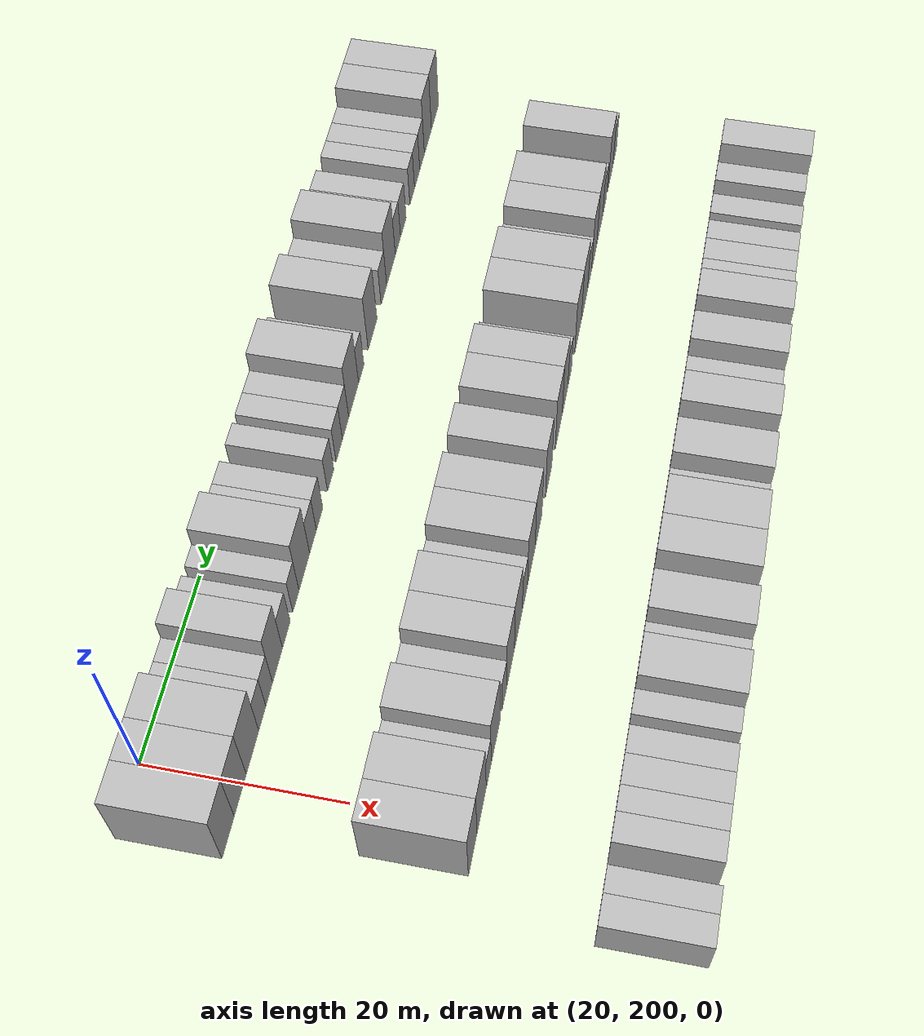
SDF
<sdf version="1.6">
 <world name="default">
  <model name="building_143">
   <static>1</static>
   <pose>25.0000 194.8662 0 0.000000 0.000000 0.000000</pose>
   <link name="link">
    <pose>0 0 4.50 0 0 0</pose>
    <collision name="collision"><geometry><box><size>10.0000 4.0058 9.0000</size></box></geometry></collision>
    <visual name="visual">
     <cast_shadows>0</cast_shadows>
     <geometry><box><size>10.0000 4.0058 9.0000</size></box></geometry>
     <material>
      <script>
       <uri>model://HANNAS_wall/materials/scripts</uri>
       <uri>model://HANNAS_wall/materials/textures</uri>
       <name>vrc/HANNAS_wall</name>
      </script>
     </material>
    </visual>
   </link>
  </model>
  <model name="building_144">
   <static>1</static>
   <pose>25.0000 198.9078 0 0.000000 0.000000 0.000000</pose>
   <link name="link">
    <pose>0 0 4.50 0 0 0</pose>
    <collision name="collision"><geometry><box><size>10.0000 4.0774 9.0000</size></box></geometry></collision>
    <visual name="visual">
     <cast_shadows>0</cast_shadows>
     <geometry><box><size>10.0000 4.0774 9.0000</size></box></geometry>
     <material>
      <script>
       <uri>model://HANNAS_wall/materials/scripts</uri>
       <uri>model://HANNAS_wall/materials/textures</uri>
       <name>vrc/HANNAS_wall</name>
      </script>
     </material>
    </visual>
   </link>
  </model>
  <model name="building_145">
   <static>1</static>
   <pose>25.0000 203.1189 0 0.000000 0.000000 0.000000</pose>
   <link name="link">
    <pose>0 0 4.50 0 0 0</pose>
    <collision name="collision"><geometry><box><size>10.0000 4.3448 9.0000</size></box></geometry></collision>
    <visual name="visual">
     <cast_shadows>0</cast_shadows>
     <geometry><box><size>10.0000 4.3448 9.0000</size></box></geometry>
     <material>
      <script>
       <uri>model://HANNAS_wall/materials/scripts</uri>
       <uri>model://HANNAS_wall/materials/textures</uri>
       <name>vrc/HANNAS_wall</name>
      </script>
     </material>
    </visual>
   </link>
  </model>
  <model name="building_146">
   <static>1</static>
   <pose>25.0000 206.5455 0 0.000000 0.000000 0.000000</pose>
   <link name="link">
    <pose>0 0 3.00 0 0 0</pose>
    <collision name="collision"><geometry><box><size>10.0000 2.5082 6.0000</size></box></geometry></collision>
    <visual name="visual">
     <cast_shadows>0</cast_shadows>
     <geometry><box><size>10.0000 2.5082 6.0000</size></box></geometry>
     <material>
      <script>
       <uri>model://HANNAS_wall/materials/scripts</uri>
       <uri>model://HANNAS_wall/materials/textures</uri>
       <name>vrc/HANNAS_wall</name>
      </script>
     </material>
    </visual>
   </link>
  </model>
  <model name="building_147">
   <static>1</static>
   <pose>25.0000 209.0223 0 0.000000 0.000000 0.000000</pose>
   <link name="link">
    <pose>0 0 3.00 0 0 0</pose>
    <collision name="collision"><geometry><box><size>10.0000 2.4454 6.0000</size></box></geometry></collision>
    <visual name="visual">
     <cast_shadows>0</cast_shadows>
     <geometry><box><size>10.0000 2.4454 6.0000</size></box></geometry>
     <material>
      <script>
       <uri>model://HANNAS_wall/materials/scripts</uri>
       <uri>model://HANNAS_wall/materials/textures</uri>
       <name>vrc/HANNAS_wall</name>
      </script>
     </material>
    </visual>
   </link>
  </model>
  <model name="building_148">
   <static>1</static>
   <pose>25.0000 212.0798 0 0.000000 0.000000 0.000000</pose>
   <link name="link">
    <pose>0 0 4.50 0 0 0</pose>
    <collision name="collision"><geometry><box><size>10.0000 3.6697 9.0000</size></box></geometry></collision>
    <visual name="visual">
     <cast_shadows>0</cast_shadows>
     <geometry><box><size>10.0000 3.6697 9.0000</size></box></geometry>
     <material>
      <script>
       <uri>model://HANNAS_wall/materials/scripts</uri>
       <uri>model://HANNAS_wall/materials/textures</uri>
       <name>vrc/HANNAS_wall</name>
      </script>
     </material>
    </visual>
   </link>
  </model>
  <model name="building_149">
   <static>1</static>
   <pose>25.0000 215.3721 0 0.000000 0.000000 0.000000</pose>
   <link name="link">
    <pose>0 0 3.00 0 0 0</pose>
    <collision name="collision"><geometry><box><size>10.0000 2.9148 6.0000</size></box></geometry></collision>
    <visual name="visual">
     <cast_shadows>0</cast_shadows>
     <geometry><box><size>10.0000 2.9148 6.0000</size></box></geometry>
     <material>
      <script>
       <uri>model://HANNAS_wall/materials/scripts</uri>
       <uri>model://HANNAS_wall/materials/textures</uri>
       <name>vrc/HANNAS_wall</name>
      </script>
     </material>
    </visual>
   </link>
  </model>
  <model name="building_150">
   <static>1</static>
   <pose>25.0000 219.0340 0 0.000000 0.000000 0.000000</pose>
   <link name="link">
    <pose>0 0 3.00 0 0 0</pose>
    <collision name="collision"><geometry><box><size>10.0000 2.4091 6.0000</size></box></geometry></collision>
    <visual name="visual">
     <cast_shadows>0</cast_shadows>
     <geometry><box><size>10.0000 2.4091 6.0000</size></box></geometry>
     <material>
      <script>
       <uri>model://HANNAS_wall/materials/scripts</uri>
       <uri>model://HANNAS_wall/materials/textures</uri>
       <name>vrc/HANNAS_wall</name>
      </script>
     </material>
    </visual>
   </link>
  </model>
  <model name="building_151">
   <static>1</static>
   <pose>25.0000 222.3541 0 0.000000 0.000000 0.000000</pose>
   <link name="link">
    <pose>0 0 4.50 0 0 0</pose>
    <collision name="collision"><geometry><box><size>10.0000 4.2311 9.0000</size></box></geometry></collision>
    <visual name="visual">
     <cast_shadows>0</cast_shadows>
     <geometry><box><size>10.0000 4.2311 9.0000</size></box></geometry>
     <material>
      <script>
       <uri>model://HANNAS_wall/materials/scripts</uri>
       <uri>model://HANNAS_wall/materials/textures</uri>
       <name>vrc/HANNAS_wall</name>
      </script>
     </material>
    </visual>
   </link>
  </model>
  <model name="building_152">
   <static>1</static>
   <pose>25.0000 225.8254 0 0.000000 0.000000 0.000000</pose>
   <link name="link">
    <pose>0 0 3.00 0 0 0</pose>
    <collision name="collision"><geometry><box><size>10.0000 2.7115 6.0000</size></box></geometry></collision>
    <visual name="visual">
     <cast_shadows>0</cast_shadows>
     <geometry><box><size>10.0000 2.7115 6.0000</size></box></geometry>
     <material>
      <script>
       <uri>model://HANNAS_wall/materials/scripts</uri>
       <uri>model://HANNAS_wall/materials/textures</uri>
       <name>vrc/HANNAS_wall</name>
      </script>
     </material>
    </visual>
   </link>
  </model>
  <model name="building_153">
   <static>1</static>
   <pose>25.0000 228.5013 0 0.000000 0.000000 0.000000</pose>
   <link name="link">
    <pose>0 0 3.00 0 0 0</pose>
    <collision name="collision"><geometry><box><size>10.0000 2.6403 6.0000</size></box></geometry></collision>
    <visual name="visual">
     <cast_shadows>0</cast_shadows>
     <geometry><box><size>10.0000 2.6403 6.0000</size></box></geometry>
     <material>
      <script>
       <uri>model://HANNAS_wall/materials/scripts</uri>
       <uri>model://HANNAS_wall/materials/textures</uri>
       <name>vrc/HANNAS_wall</name>
      </script>
     </material>
    </visual>
   </link>
  </model>
  <model name="building_154">
   <static>1</static>
   <pose>25.0000 233.1339 0 0.000000 0.000000 0.000000</pose>
   <link name="link">
    <pose>0 0 3.00 0 0 0</pose>
    <collision name="collision"><geometry><box><size>10.0000 2.6249 6.0000</size></box></geometry></collision>
    <visual name="visual">
     <cast_shadows>0</cast_shadows>
     <geometry><box><size>10.0000 2.6249 6.0000</size></box></geometry>
     <material>
      <script>
       <uri>model://HANNAS_wall/materials/scripts</uri>
       <uri>model://HANNAS_wall/materials/textures</uri>
       <name>vrc/HANNAS_wall</name>
      </script>
     </material>
    </visual>
   </link>
  </model>
  <model name="building_155">
   <static>1</static>
   <pose>25.0000 236.8277 0 0.000000 0.000000 0.000000</pose>
   <link name="link">
    <pose>0 0 3.00 0 0 0</pose>
    <collision name="collision"><geometry><box><size>10.0000 2.7626 6.0000</size></box></geometry></collision>
    <visual name="visual">
     <cast_shadows>0</cast_shadows>
     <geometry><box><size>10.0000 2.7626 6.0000</size></box></geometry>
     <material>
      <script>
       <uri>model://HANNAS_wall/materials/scripts</uri>
       <uri>model://HANNAS_wall/materials/textures</uri>
       <name>vrc/HANNAS_wall</name>
      </script>
     </material>
    </visual>
   </link>
  </model>
  <model name="building_156">
   <static>1</static>
   <pose>25.0000 239.6015 0 0.000000 0.000000 0.000000</pose>
   <link name="link">
    <pose>0 0 3.00 0 0 0</pose>
    <collision name="collision"><geometry><box><size>10.0000 2.7850 6.0000</size></box></geometry></collision>
    <visual name="visual">
     <cast_shadows>0</cast_shadows>
     <geometry><box><size>10.0000 2.7850 6.0000</size></box></geometry>
     <material>
      <script>
       <uri>model://HANNAS_wall/materials/scripts</uri>
       <uri>model://HANNAS_wall/materials/textures</uri>
       <name>vrc/HANNAS_wall</name>
      </script>
     </material>
    </visual>
   </link>
  </model>
  <model name="building_157">
   <static>1</static>
   <pose>25.0000 243.2323 0 0.000000 0.000000 0.000000</pose>
   <link name="link">
    <pose>0 0 4.50 0 0 0</pose>
    <collision name="collision"><geometry><box><size>10.0000 4.4766 9.0000</size></box></geometry></collision>
    <visual name="visual">
     <cast_shadows>0</cast_shadows>
     <geometry><box><size>10.0000 4.4766 9.0000</size></box></geometry>
     <material>
      <script>
       <uri>model://HANNAS_wall/materials/scripts</uri>
       <uri>model://HANNAS_wall/materials/textures</uri>
       <name>vrc/HANNAS_wall</name>
      </script>
     </material>
    </visual>
   </link>
  </model>
  <model name="building_158">
   <static>1</static>
   <pose>25.0000 246.6875 0 0.000000 0.000000 0.000000</pose>
   <link name="link">
    <pose>0 0 3.00 0 0 0</pose>
    <collision name="collision"><geometry><box><size>10.0000 2.4339 6.0000</size></box></geometry></collision>
    <visual name="visual">
     <cast_shadows>0</cast_shadows>
     <geometry><box><size>10.0000 2.4339 6.0000</size></box></geometry>
     <material>
      <script>
       <uri>model://HANNAS_wall/materials/scripts</uri>
       <uri>model://HANNAS_wall/materials/textures</uri>
       <name>vrc/HANNAS_wall</name>
      </script>
     </material>
    </visual>
   </link>
  </model>
  <model name="building_159">
   <static>1</static>
   <pose>25.0000 252.0041 0 0.000000 0.000000 0.000000</pose>
   <link name="link">
    <pose>0 0 4.50 0 0 0</pose>
    <collision name="collision"><geometry><box><size>10.0000 4.1992 9.0000</size></box></geometry></collision>
    <visual name="visual">
     <cast_shadows>0</cast_shadows>
     <geometry><box><size>10.0000 4.1992 9.0000</size></box></geometry>
     <material>
      <script>
       <uri>model://HANNAS_wall/materials/scripts</uri>
       <uri>model://HANNAS_wall/materials/textures</uri>
       <name>vrc/HANNAS_wall</name>
      </script>
     </material>
    </visual>
   </link>
  </model>
  <model name="building_160">
   <static>1</static>
   <pose>25.0000 257.4754 0 0.000000 0.000000 0.000000</pose>
   <link name="link">
    <pose>0 0 3.00 0 0 0</pose>
    <collision name="collision"><geometry><box><size>10.0000 2.7434 6.0000</size></box></geometry></collision>
    <visual name="visual">
     <cast_shadows>0</cast_shadows>
     <geometry><box><size>10.0000 2.7434 6.0000</size></box></geometry>
     <material>
      <script>
       <uri>model://HANNAS_wall/materials/scripts</uri>
       <uri>model://HANNAS_wall/materials/textures</uri>
       <name>vrc/HANNAS_wall</name>
      </script>
     </material>
    </visual>
   </link>
  </model>
  <model name="building_161">
   <static>1</static>
   <pose>25.0000 261.0241 0 0.000000 0.000000 0.000000</pose>
   <link name="link">
    <pose>0 0 4.50 0 0 0</pose>
    <collision name="collision"><geometry><box><size>10.0000 4.3541 9.0000</size></box></geometry></collision>
    <visual name="visual">
     <cast_shadows>0</cast_shadows>
     <geometry><box><size>10.0000 4.3541 9.0000</size></box></geometry>
     <material>
      <script>
       <uri>model://HANNAS_wall/materials/scripts</uri>
       <uri>model://HANNAS_wall/materials/textures</uri>
       <name>vrc/HANNAS_wall</name>
      </script>
     </material>
    </visual>
   </link>
  </model>
  <model name="building_162">
   <static>1</static>
   <pose>25.0000 264.5399 0 0.000000 0.000000 0.000000</pose>
   <link name="link">
    <pose>0 0 3.00 0 0 0</pose>
    <collision name="collision"><geometry><box><size>10.0000 2.6776 6.0000</size></box></geometry></collision>
    <visual name="visual">
     <cast_shadows>0</cast_shadows>
     <geometry><box><size>10.0000 2.6776 6.0000</size></box></geometry>
     <material>
      <script>
       <uri>model://HANNAS_wall/materials/scripts</uri>
       <uri>model://HANNAS_wall/materials/textures</uri>
       <name>vrc/HANNAS_wall</name>
      </script>
     </material>
    </visual>
   </link>
  </model>
  <model name="building_163">
   <static>1</static>
   <pose>25.0000 267.3074 0 0.000000 0.000000 0.000000</pose>
   <link name="link">
    <pose>0 0 3.00 0 0 0</pose>
    <collision name="collision"><geometry><box><size>10.0000 2.8573 6.0000</size></box></geometry></collision>
    <visual name="visual">
     <cast_shadows>0</cast_shadows>
     <geometry><box><size>10.0000 2.8573 6.0000</size></box></geometry>
     <material>
      <script>
       <uri>model://HANNAS_wall/materials/scripts</uri>
       <uri>model://HANNAS_wall/materials/textures</uri>
       <name>vrc/HANNAS_wall</name>
      </script>
     </material>
    </visual>
   </link>
  </model>
  <model name="building_164">
   <static>1</static>
   <pose>25.0000 271.9910 0 0.000000 0.000000 0.000000</pose>
   <link name="link">
    <pose>0 0 3.00 0 0 0</pose>
    <collision name="collision"><geometry><box><size>10.0000 2.5100 6.0000</size></box></geometry></collision>
    <visual name="visual">
     <cast_shadows>0</cast_shadows>
     <geometry><box><size>10.0000 2.5100 6.0000</size></box></geometry>
     <material>
      <script>
       <uri>model://HANNAS_wall/materials/scripts</uri>
       <uri>model://HANNAS_wall/materials/textures</uri>
       <name>vrc/HANNAS_wall</name>
      </script>
     </material>
    </visual>
   </link>
  </model>
  <model name="building_165">
   <static>1</static>
   <pose>25.0000 274.6489 0 0.000000 0.000000 0.000000</pose>
   <link name="link">
    <pose>0 0 3.00 0 0 0</pose>
    <collision name="collision"><geometry><box><size>10.0000 2.8057 6.0000</size></box></geometry></collision>
    <visual name="visual">
     <cast_shadows>0</cast_shadows>
     <geometry><box><size>10.0000 2.8057 6.0000</size></box></geometry>
     <material>
      <script>
       <uri>model://HANNAS_wall/materials/scripts</uri>
       <uri>model://HANNAS_wall/materials/textures</uri>
       <name>vrc/HANNAS_wall</name>
      </script>
     </material>
    </visual>
   </link>
  </model>
  <model name="building_166">
   <static>1</static>
   <pose>25.0000 277.3322 0 0.000000 0.000000 0.000000</pose>
   <link name="link">
    <pose>0 0 3.00 0 0 0</pose>
    <collision name="collision"><geometry><box><size>10.0000 2.5609 6.0000</size></box></geometry></collision>
    <visual name="visual">
     <cast_shadows>0</cast_shadows>
     <geometry><box><size>10.0000 2.5609 6.0000</size></box></geometry>
     <material>
      <script>
       <uri>model://HANNAS_wall/materials/scripts</uri>
       <uri>model://HANNAS_wall/materials/textures</uri>
       <name>vrc/HANNAS_wall</name>
      </script>
     </material>
    </visual>
   </link>
  </model>
  <model name="building_167">
   <static>1</static>
   <pose>25.0000 280.5928 0 0.000000 0.000000 0.000000</pose>
   <link name="link">
    <pose>0 0 4.50 0 0 0</pose>
    <collision name="collision"><geometry><box><size>10.0000 3.9601 9.0000</size></box></geometry></collision>
    <visual name="visual">
     <cast_shadows>0</cast_shadows>
     <geometry><box><size>10.0000 3.9601 9.0000</size></box></geometry>
     <material>
      <script>
       <uri>model://HANNAS_wall/materials/scripts</uri>
       <uri>model://HANNAS_wall/materials/textures</uri>
       <name>vrc/HANNAS_wall</name>
      </script>
     </material>
    </visual>
   </link>
  </model>
  <model name="building_168">
   <static>1</static>
   <pose>25.0000 284.5794 0 0.000000 0.000000 0.000000</pose>
   <link name="link">
    <pose>0 0 4.50 0 0 0</pose>
    <collision name="collision"><geometry><box><size>10.0000 4.0131 9.0000</size></box></geometry></collision>
    <visual name="visual">
     <cast_shadows>0</cast_shadows>
     <geometry><box><size>10.0000 4.0131 9.0000</size></box></geometry>
     <material>
      <script>
       <uri>model://HANNAS_wall/materials/scripts</uri>
       <uri>model://HANNAS_wall/materials/textures</uri>
       <name>vrc/HANNAS_wall</name>
      </script>
     </material>
    </visual>
   </link>
  </model>
  <model name="building_339">
   <static>1</static>
   <pose>47.0000 197.3979 0 0.000000 0.000000 0.000000</pose>
   <link name="link">
    <pose>0 0 4.50 0 0 0</pose>
    <collision name="collision"><geometry><box><size>10.0000 3.9378 9.0000</size></box></geometry></collision>
    <visual name="visual">
     <cast_shadows>0</cast_shadows>
     <geometry><box><size>10.0000 3.9378 9.0000</size></box></geometry>
     <material>
      <script>
       <uri>model://HANNAS_wall/materials/scripts</uri>
       <uri>model://HANNAS_wall/materials/textures</uri>
       <name>vrc/HANNAS_wall</name>
      </script>
     </material>
    </visual>
   </link>
  </model>
  <model name="building_340">
   <static>1</static>
   <pose>47.0000 201.5405 0 0.000000 0.000000 0.000000</pose>
   <link name="link">
    <pose>0 0 4.50 0 0 0</pose>
    <collision name="collision"><geometry><box><size>10.0000 4.3475 9.0000</size></box></geometry></collision>
    <visual name="visual">
     <cast_shadows>0</cast_shadows>
     <geometry><box><size>10.0000 4.3475 9.0000</size></box></geometry>
     <material>
      <script>
       <uri>model://HANNAS_wall/materials/scripts</uri>
       <uri>model://HANNAS_wall/materials/textures</uri>
       <name>vrc/HANNAS_wall</name>
      </script>
     </material>
    </visual>
   </link>
  </model>
  <model name="building_341">
   <static>1</static>
   <pose>47.0000 204.9204 0 0.000000 0.000000 0.000000</pose>
   <link name="link">
    <pose>0 0 3.00 0 0 0</pose>
    <collision name="collision"><geometry><box><size>10.0000 2.4124 6.0000</size></box></geometry></collision>
    <visual name="visual">
     <cast_shadows>0</cast_shadows>
     <geometry><box><size>10.0000 2.4124 6.0000</size></box></geometry>
     <material>
      <script>
       <uri>model://HANNAS_wall/materials/scripts</uri>
       <uri>model://HANNAS_wall/materials/textures</uri>
       <name>vrc/HANNAS_wall</name>
      </script>
     </material>
    </visual>
   </link>
  </model>
  <model name="building_342">
   <static>1</static>
   <pose>47.0000 208.3043 0 0.000000 0.000000 0.000000</pose>
   <link name="link">
    <pose>0 0 4.50 0 0 0</pose>
    <collision name="collision"><geometry><box><size>10.0000 4.3553 9.0000</size></box></geometry></collision>
    <visual name="visual">
     <cast_shadows>0</cast_shadows>
     <geometry><box><size>10.0000 4.3553 9.0000</size></box></geometry>
     <material>
      <script>
       <uri>model://HANNAS_wall/materials/scripts</uri>
       <uri>model://HANNAS_wall/materials/textures</uri>
       <name>vrc/HANNAS_wall</name>
      </script>
     </material>
    </visual>
   </link>
  </model>
  <model name="building_343">
   <static>1</static>
   <pose>47.0000 212.6954 0 0.000000 0.000000 0.000000</pose>
   <link name="link">
    <pose>0 0 3.00 0 0 0</pose>
    <collision name="collision"><geometry><box><size>10.0000 2.4269 6.0000</size></box></geometry></collision>
    <visual name="visual">
     <cast_shadows>0</cast_shadows>
     <geometry><box><size>10.0000 2.4269 6.0000</size></box></geometry>
     <material>
      <script>
       <uri>model://HANNAS_wall/materials/scripts</uri>
       <uri>model://HANNAS_wall/materials/textures</uri>
       <name>vrc/HANNAS_wall</name>
      </script>
     </material>
    </visual>
   </link>
  </model>
  <model name="building_344">
   <static>1</static>
   <pose>47.0000 215.9149 0 0.000000 0.000000 0.000000</pose>
   <link name="link">
    <pose>0 0 4.50 0 0 0</pose>
    <collision name="collision"><geometry><box><size>10.0000 4.0120 9.0000</size></box></geometry></collision>
    <visual name="visual">
     <cast_shadows>0</cast_shadows>
     <geometry><box><size>10.0000 4.0120 9.0000</size></box></geometry>
     <material>
      <script>
       <uri>model://HANNAS_wall/materials/scripts</uri>
       <uri>model://HANNAS_wall/materials/textures</uri>
       <name>vrc/HANNAS_wall</name>
      </script>
     </material>
    </visual>
   </link>
  </model>
  <model name="building_345">
   <static>1</static>
   <pose>47.0000 220.0492 0 0.000000 0.000000 0.000000</pose>
   <link name="link">
    <pose>0 0 4.50 0 0 0</pose>
    <collision name="collision"><geometry><box><size>10.0000 4.2565 9.0000</size></box></geometry></collision>
    <visual name="visual">
     <cast_shadows>0</cast_shadows>
     <geometry><box><size>10.0000 4.2565 9.0000</size></box></geometry>
     <material>
      <script>
       <uri>model://HANNAS_wall/materials/scripts</uri>
       <uri>model://HANNAS_wall/materials/textures</uri>
       <name>vrc/HANNAS_wall</name>
      </script>
     </material>
    </visual>
   </link>
  </model>
  <model name="building_346">
   <static>1</static>
   <pose>47.0000 223.5786 0 0.000000 0.000000 0.000000</pose>
   <link name="link">
    <pose>0 0 3.00 0 0 0</pose>
    <collision name="collision"><geometry><box><size>10.0000 2.8024 6.0000</size></box></geometry></collision>
    <visual name="visual">
     <cast_shadows>0</cast_shadows>
     <geometry><box><size>10.0000 2.8024 6.0000</size></box></geometry>
     <material>
      <script>
       <uri>model://HANNAS_wall/materials/scripts</uri>
       <uri>model://HANNAS_wall/materials/textures</uri>
       <name>vrc/HANNAS_wall</name>
      </script>
     </material>
    </visual>
   </link>
  </model>
  <model name="building_347">
   <static>1</static>
   <pose>47.0000 227.1272 0 0.000000 0.000000 0.000000</pose>
   <link name="link">
    <pose>0 0 4.50 0 0 0</pose>
    <collision name="collision"><geometry><box><size>10.0000 4.2948 9.0000</size></box></geometry></collision>
    <visual name="visual">
     <cast_shadows>0</cast_shadows>
     <geometry><box><size>10.0000 4.2948 9.0000</size></box></geometry>
     <material>
      <script>
       <uri>model://HANNAS_wall/materials/scripts</uri>
       <uri>model://HANNAS_wall/materials/textures</uri>
       <name>vrc/HANNAS_wall</name>
      </script>
     </material>
    </visual>
   </link>
  </model>
  <model name="building_348">
   <static>1</static>
   <pose>47.0000 231.2522 0 0.000000 0.000000 0.000000</pose>
   <link name="link">
    <pose>0 0 4.50 0 0 0</pose>
    <collision name="collision"><geometry><box><size>10.0000 3.9551 9.0000</size></box></geometry></collision>
    <visual name="visual">
     <cast_shadows>0</cast_shadows>
     <geometry><box><size>10.0000 3.9551 9.0000</size></box></geometry>
     <material>
      <script>
       <uri>model://HANNAS_wall/materials/scripts</uri>
       <uri>model://HANNAS_wall/materials/textures</uri>
       <name>vrc/HANNAS_wall</name>
      </script>
     </material>
    </visual>
   </link>
  </model>
  <model name="building_349">
   <static>1</static>
   <pose>47.0000 237.1720 0 0.000000 0.000000 0.000000</pose>
   <link name="link">
    <pose>0 0 4.50 0 0 0</pose>
    <collision name="collision"><geometry><box><size>10.0000 3.8847 9.0000</size></box></geometry></collision>
    <visual name="visual">
     <cast_shadows>0</cast_shadows>
     <geometry><box><size>10.0000 3.8847 9.0000</size></box></geometry>
     <material>
      <script>
       <uri>model://HANNAS_wall/materials/scripts</uri>
       <uri>model://HANNAS_wall/materials/textures</uri>
       <name>vrc/HANNAS_wall</name>
      </script>
     </material>
    </visual>
   </link>
  </model>
  <model name="building_350">
   <static>1</static>
   <pose>47.0000 243.2594 0 0.000000 0.000000 0.000000</pose>
   <link name="link">
    <pose>0 0 4.50 0 0 0</pose>
    <collision name="collision"><geometry><box><size>10.0000 4.2901 9.0000</size></box></geometry></collision>
    <visual name="visual">
     <cast_shadows>0</cast_shadows>
     <geometry><box><size>10.0000 4.2901 9.0000</size></box></geometry>
     <material>
      <script>
       <uri>model://HANNAS_wall/materials/scripts</uri>
       <uri>model://HANNAS_wall/materials/textures</uri>
       <name>vrc/HANNAS_wall</name>
      </script>
     </material>
    </visual>
   </link>
  </model>
  <model name="building_351">
   <static>1</static>
   <pose>47.0000 247.2157 0 0.000000 0.000000 0.000000</pose>
   <link name="link">
    <pose>0 0 4.50 0 0 0</pose>
    <collision name="collision"><geometry><box><size>10.0000 3.6224 9.0000</size></box></geometry></collision>
    <visual name="visual">
     <cast_shadows>0</cast_shadows>
     <geometry><box><size>10.0000 3.6224 9.0000</size></box></geometry>
     <material>
      <script>
       <uri>model://HANNAS_wall/materials/scripts</uri>
       <uri>model://HANNAS_wall/materials/textures</uri>
       <name>vrc/HANNAS_wall</name>
      </script>
     </material>
    </visual>
   </link>
  </model>
  <model name="building_352">
   <static>1</static>
   <pose>47.0000 250.2420 0 0.000000 0.000000 0.000000</pose>
   <link name="link">
    <pose>0 0 3.00 0 0 0</pose>
    <collision name="collision"><geometry><box><size>10.0000 2.4302 6.0000</size></box></geometry></collision>
    <visual name="visual">
     <cast_shadows>0</cast_shadows>
     <geometry><box><size>10.0000 2.4302 6.0000</size></box></geometry>
     <material>
      <script>
       <uri>model://HANNAS_wall/materials/scripts</uri>
       <uri>model://HANNAS_wall/materials/textures</uri>
       <name>vrc/HANNAS_wall</name>
      </script>
     </material>
    </visual>
   </link>
  </model>
  <model name="building_353">
   <static>1</static>
   <pose>47.0000 255.6875 0 0.000000 0.000000 0.000000</pose>
   <link name="link">
    <pose>0 0 4.50 0 0 0</pose>
    <collision name="collision"><geometry><box><size>10.0000 4.4607 9.0000</size></box></geometry></collision>
    <visual name="visual">
     <cast_shadows>0</cast_shadows>
     <geometry><box><size>10.0000 4.4607 9.0000</size></box></geometry>
     <material>
      <script>
       <uri>model://HANNAS_wall/materials/scripts</uri>
       <uri>model://HANNAS_wall/materials/textures</uri>
       <name>vrc/HANNAS_wall</name>
      </script>
     </material>
    </visual>
   </link>
  </model>
  <model name="building_354">
   <static>1</static>
   <pose>47.0000 260.0492 0 0.000000 0.000000 0.000000</pose>
   <link name="link">
    <pose>0 0 4.50 0 0 0</pose>
    <collision name="collision"><geometry><box><size>10.0000 4.2627 9.0000</size></box></geometry></collision>
    <visual name="visual">
     <cast_shadows>0</cast_shadows>
     <geometry><box><size>10.0000 4.2627 9.0000</size></box></geometry>
     <material>
      <script>
       <uri>model://HANNAS_wall/materials/scripts</uri>
       <uri>model://HANNAS_wall/materials/textures</uri>
       <name>vrc/HANNAS_wall</name>
      </script>
     </material>
    </visual>
   </link>
  </model>
  <model name="building_355">
   <static>1</static>
   <pose>47.0000 263.5977 0 0.000000 0.000000 0.000000</pose>
   <link name="link">
    <pose>0 0 3.00 0 0 0</pose>
    <collision name="collision"><geometry><box><size>10.0000 2.8343 6.0000</size></box></geometry></collision>
    <visual name="visual">
     <cast_shadows>0</cast_shadows>
     <geometry><box><size>10.0000 2.8343 6.0000</size></box></geometry>
     <material>
      <script>
       <uri>model://HANNAS_wall/materials/scripts</uri>
       <uri>model://HANNAS_wall/materials/textures</uri>
       <name>vrc/HANNAS_wall</name>
      </script>
     </material>
    </visual>
   </link>
  </model>
  <model name="building_356">
   <static>1</static>
   <pose>47.0000 266.8760 0 0.000000 0.000000 0.000000</pose>
   <link name="link">
    <pose>0 0 4.50 0 0 0</pose>
    <collision name="collision"><geometry><box><size>10.0000 3.7223 9.0000</size></box></geometry></collision>
    <visual name="visual">
     <cast_shadows>0</cast_shadows>
     <geometry><box><size>10.0000 3.7223 9.0000</size></box></geometry>
     <material>
      <script>
       <uri>model://HANNAS_wall/materials/scripts</uri>
       <uri>model://HANNAS_wall/materials/textures</uri>
       <name>vrc/HANNAS_wall</name>
      </script>
     </material>
    </visual>
   </link>
  </model>
  <model name="building_357">
   <static>1</static>
   <pose>47.0000 270.9210 0 0.000000 0.000000 0.000000</pose>
   <link name="link">
    <pose>0 0 4.50 0 0 0</pose>
    <collision name="collision"><geometry><box><size>10.0000 4.3677 9.0000</size></box></geometry></collision>
    <visual name="visual">
     <cast_shadows>0</cast_shadows>
     <geometry><box><size>10.0000 4.3677 9.0000</size></box></geometry>
     <material>
      <script>
       <uri>model://HANNAS_wall/materials/scripts</uri>
       <uri>model://HANNAS_wall/materials/textures</uri>
       <name>vrc/HANNAS_wall</name>
      </script>
     </material>
    </visual>
   </link>
  </model>
  <model name="building_358">
   <static>1</static>
   <pose>47.0000 274.5165 0 0.000000 0.000000 0.000000</pose>
   <link name="link">
    <pose>0 0 3.00 0 0 0</pose>
    <collision name="collision"><geometry><box><size>10.0000 2.8232 6.0000</size></box></geometry></collision>
    <visual name="visual">
     <cast_shadows>0</cast_shadows>
     <geometry><box><size>10.0000 2.8232 6.0000</size></box></geometry>
     <material>
      <script>
       <uri>model://HANNAS_wall/materials/scripts</uri>
       <uri>model://HANNAS_wall/materials/textures</uri>
       <name>vrc/HANNAS_wall</name>
      </script>
     </material>
    </visual>
   </link>
  </model>
  <model name="building_359">
   <static>1</static>
   <pose>47.0000 278.8952 0 0.000000 0.000000 0.000000</pose>
   <link name="link">
    <pose>0 0 4.50 0 0 0</pose>
    <collision name="collision"><geometry><box><size>10.0000 3.9342 9.0000</size></box></geometry></collision>
    <visual name="visual">
     <cast_shadows>0</cast_shadows>
     <geometry><box><size>10.0000 3.9342 9.0000</size></box></geometry>
     <material>
      <script>
       <uri>model://HANNAS_wall/materials/scripts</uri>
       <uri>model://HANNAS_wall/materials/textures</uri>
       <name>vrc/HANNAS_wall</name>
      </script>
     </material>
    </visual>
   </link>
  </model>
  <model name="building_360">
   <static>1</static>
   <pose>47.0000 282.2682 0 0.000000 0.000000 0.000000</pose>
   <link name="link">
    <pose>0 0 3.00 0 0 0</pose>
    <collision name="collision"><geometry><box><size>10.0000 2.8118 6.0000</size></box></geometry></collision>
    <visual name="visual">
     <cast_shadows>0</cast_shadows>
     <geometry><box><size>10.0000 2.8118 6.0000</size></box></geometry>
     <material>
      <script>
       <uri>model://HANNAS_wall/materials/scripts</uri>
       <uri>model://HANNAS_wall/materials/textures</uri>
       <name>vrc/HANNAS_wall</name>
      </script>
     </material>
    </visual>
   </link>
  </model>
  <model name="building_532">
   <static>1</static>
   <pose>69.0000 192.8668 0 0.000000 0.000000 0.000000</pose>
   <link name="link">
    <pose>0 0 3.00 0 0 0</pose>
    <collision name="collision"><geometry><box><size>10.0000 2.9090 6.0000</size></box></geometry></collision>
    <visual name="visual">
     <cast_shadows>0</cast_shadows>
     <geometry><box><size>10.0000 2.9090 6.0000</size></box></geometry>
     <material>
      <script>
       <uri>model://HANNAS_wall/materials/scripts</uri>
       <uri>model://HANNAS_wall/materials/textures</uri>
       <name>vrc/HANNAS_wall</name>
      </script>
     </material>
    </visual>
   </link>
  </model>
  <model name="building_533">
   <static>1</static>
   <pose>69.0000 195.5705 0 0.000000 0.000000 0.000000</pose>
   <link name="link">
    <pose>0 0 3.00 0 0 0</pose>
    <collision name="collision"><geometry><box><size>10.0000 2.4985 6.0000</size></box></geometry></collision>
    <visual name="visual">
     <cast_shadows>0</cast_shadows>
     <geometry><box><size>10.0000 2.4985 6.0000</size></box></geometry>
     <material>
      <script>
       <uri>model://HANNAS_wall/materials/scripts</uri>
       <uri>model://HANNAS_wall/materials/textures</uri>
       <name>vrc/HANNAS_wall</name>
      </script>
     </material>
    </visual>
   </link>
  </model>
  <model name="building_534">
   <static>1</static>
   <pose>69.0000 200.2496 0 0.000000 0.000000 0.000000</pose>
   <link name="link">
    <pose>0 0 3.00 0 0 0</pose>
    <collision name="collision"><geometry><box><size>10.0000 2.8598 6.0000</size></box></geometry></collision>
    <visual name="visual">
     <cast_shadows>0</cast_shadows>
     <geometry><box><size>10.0000 2.8598 6.0000</size></box></geometry>
     <material>
      <script>
       <uri>model://HANNAS_wall/materials/scripts</uri>
       <uri>model://HANNAS_wall/materials/textures</uri>
       <name>vrc/HANNAS_wall</name>
      </script>
     </material>
    </visual>
   </link>
  </model>
  <model name="building_535">
   <static>1</static>
   <pose>69.0000 202.9178 0 0.000000 0.000000 0.000000</pose>
   <link name="link">
    <pose>0 0 3.00 0 0 0</pose>
    <collision name="collision"><geometry><box><size>10.0000 2.4766 6.0000</size></box></geometry></collision>
    <visual name="visual">
     <cast_shadows>0</cast_shadows>
     <geometry><box><size>10.0000 2.4766 6.0000</size></box></geometry>
     <material>
      <script>
       <uri>model://HANNAS_wall/materials/scripts</uri>
       <uri>model://HANNAS_wall/materials/textures</uri>
       <name>vrc/HANNAS_wall</name>
      </script>
     </material>
    </visual>
   </link>
  </model>
  <model name="building_536">
   <static>1</static>
   <pose>69.0000 205.6541 0 0.000000 0.000000 0.000000</pose>
   <link name="link">
    <pose>0 0 3.00 0 0 0</pose>
    <collision name="collision"><geometry><box><size>10.0000 2.9961 6.0000</size></box></geometry></collision>
    <visual name="visual">
     <cast_shadows>0</cast_shadows>
     <geometry><box><size>10.0000 2.9961 6.0000</size></box></geometry>
     <material>
      <script>
       <uri>model://HANNAS_wall/materials/scripts</uri>
       <uri>model://HANNAS_wall/materials/textures</uri>
       <name>vrc/HANNAS_wall</name>
      </script>
     </material>
    </visual>
   </link>
  </model>
  <model name="building_537">
   <static>1</static>
   <pose>69.0000 208.5159 0 0.000000 0.000000 0.000000</pose>
   <link name="link">
    <pose>0 0 3.00 0 0 0</pose>
    <collision name="collision"><geometry><box><size>10.0000 2.7273 6.0000</size></box></geometry></collision>
    <visual name="visual">
     <cast_shadows>0</cast_shadows>
     <geometry><box><size>10.0000 2.7273 6.0000</size></box></geometry>
     <material>
      <script>
       <uri>model://HANNAS_wall/materials/scripts</uri>
       <uri>model://HANNAS_wall/materials/textures</uri>
       <name>vrc/HANNAS_wall</name>
      </script>
     </material>
    </visual>
   </link>
  </model>
  <model name="building_538">
   <static>1</static>
   <pose>69.0000 212.1479 0 0.000000 0.000000 0.000000</pose>
   <link name="link">
    <pose>0 0 3.00 0 0 0</pose>
    <collision name="collision"><geometry><box><size>10.0000 2.5368 6.0000</size></box></geometry></collision>
    <visual name="visual">
     <cast_shadows>0</cast_shadows>
     <geometry><box><size>10.0000 2.5368 6.0000</size></box></geometry>
     <material>
      <script>
       <uri>model://HANNAS_wall/materials/scripts</uri>
       <uri>model://HANNAS_wall/materials/textures</uri>
       <name>vrc/HANNAS_wall</name>
      </script>
     </material>
    </visual>
   </link>
  </model>
  <model name="building_539">
   <static>1</static>
   <pose>69.0000 215.5955 0 0.000000 0.000000 0.000000</pose>
   <link name="link">
    <pose>0 0 4.50 0 0 0</pose>
    <collision name="collision"><geometry><box><size>10.0000 4.3585 9.0000</size></box></geometry></collision>
    <visual name="visual">
     <cast_shadows>0</cast_shadows>
     <geometry><box><size>10.0000 4.3585 9.0000</size></box></geometry>
     <material>
      <script>
       <uri>model://HANNAS_wall/materials/scripts</uri>
       <uri>model://HANNAS_wall/materials/textures</uri>
       <name>vrc/HANNAS_wall</name>
      </script>
     </material>
    </visual>
   </link>
  </model>
  <model name="building_540">
   <static>1</static>
   <pose>69.0000 219.0450 0 0.000000 0.000000 0.000000</pose>
   <link name="link">
    <pose>0 0 3.00 0 0 0</pose>
    <collision name="collision"><geometry><box><size>10.0000 2.5405 6.0000</size></box></geometry></collision>
    <visual name="visual">
     <cast_shadows>0</cast_shadows>
     <geometry><box><size>10.0000 2.5405 6.0000</size></box></geometry>
     <material>
      <script>
       <uri>model://HANNAS_wall/materials/scripts</uri>
       <uri>model://HANNAS_wall/materials/textures</uri>
       <name>vrc/HANNAS_wall</name>
      </script>
     </material>
    </visual>
   </link>
  </model>
  <model name="building_541">
   <static>1</static>
   <pose>69.0000 222.3632 0 0.000000 0.000000 0.000000</pose>
   <link name="link">
    <pose>0 0 4.50 0 0 0</pose>
    <collision name="collision"><geometry><box><size>10.0000 4.0960 9.0000</size></box></geometry></collision>
    <visual name="visual">
     <cast_shadows>0</cast_shadows>
     <geometry><box><size>10.0000 4.0960 9.0000</size></box></geometry>
     <material>
      <script>
       <uri>model://HANNAS_wall/materials/scripts</uri>
       <uri>model://HANNAS_wall/materials/textures</uri>
       <name>vrc/HANNAS_wall</name>
      </script>
     </material>
    </visual>
   </link>
  </model>
  <model name="building_542">
   <static>1</static>
   <pose>69.0000 228.4432 0 0.000000 0.000000 0.000000</pose>
   <link name="link">
    <pose>0 0 4.50 0 0 0</pose>
    <collision name="collision"><geometry><box><size>10.0000 4.0641 9.0000</size></box></geometry></collision>
    <visual name="visual">
     <cast_shadows>0</cast_shadows>
     <geometry><box><size>10.0000 4.0641 9.0000</size></box></geometry>
     <material>
      <script>
       <uri>model://HANNAS_wall/materials/scripts</uri>
       <uri>model://HANNAS_wall/materials/textures</uri>
       <name>vrc/HANNAS_wall</name>
      </script>
     </material>
    </visual>
   </link>
  </model>
  <model name="building_543">
   <static>1</static>
   <pose>69.0000 232.6839 0 0.000000 0.000000 0.000000</pose>
   <link name="link">
    <pose>0 0 4.50 0 0 0</pose>
    <collision name="collision"><geometry><box><size>10.0000 4.4173 9.0000</size></box></geometry></collision>
    <visual name="visual">
     <cast_shadows>0</cast_shadows>
     <geometry><box><size>10.0000 4.4173 9.0000</size></box></geometry>
     <material>
      <script>
       <uri>model://HANNAS_wall/materials/scripts</uri>
       <uri>model://HANNAS_wall/materials/textures</uri>
       <name>vrc/HANNAS_wall</name>
      </script>
     </material>
    </visual>
   </link>
  </model>
  <model name="building_544">
   <static>1</static>
   <pose>69.0000 236.1663 0 0.000000 0.000000 0.000000</pose>
   <link name="link">
    <pose>0 0 3.00 0 0 0</pose>
    <collision name="collision"><geometry><box><size>10.0000 2.5475 6.0000</size></box></geometry></collision>
    <visual name="visual">
     <cast_shadows>0</cast_shadows>
     <geometry><box><size>10.0000 2.5475 6.0000</size></box></geometry>
     <material>
      <script>
       <uri>model://HANNAS_wall/materials/scripts</uri>
       <uri>model://HANNAS_wall/materials/textures</uri>
       <name>vrc/HANNAS_wall</name>
      </script>
     </material>
    </visual>
   </link>
  </model>
  <model name="building_545">
   <static>1</static>
   <pose>69.0000 239.5369 0 0.000000 0.000000 0.000000</pose>
   <link name="link">
    <pose>0 0 4.50 0 0 0</pose>
    <collision name="collision"><geometry><box><size>10.0000 4.1937 9.0000</size></box></geometry></collision>
    <visual name="visual">
     <cast_shadows>0</cast_shadows>
     <geometry><box><size>10.0000 4.1937 9.0000</size></box></geometry>
     <material>
      <script>
       <uri>model://HANNAS_wall/materials/scripts</uri>
       <uri>model://HANNAS_wall/materials/textures</uri>
       <name>vrc/HANNAS_wall</name>
      </script>
     </material>
    </visual>
   </link>
  </model>
  <model name="building_546">
   <static>1</static>
   <pose>69.0000 245.4934 0 0.000000 0.000000 0.000000</pose>
   <link name="link">
    <pose>0 0 4.50 0 0 0</pose>
    <collision name="collision"><geometry><box><size>10.0000 3.7194 9.0000</size></box></geometry></collision>
    <visual name="visual">
     <cast_shadows>0</cast_shadows>
     <geometry><box><size>10.0000 3.7194 9.0000</size></box></geometry>
     <material>
      <script>
       <uri>model://HANNAS_wall/materials/scripts</uri>
       <uri>model://HANNAS_wall/materials/textures</uri>
       <name>vrc/HANNAS_wall</name>
      </script>
     </material>
    </visual>
   </link>
  </model>
  <model name="building_547">
   <static>1</static>
   <pose>69.0000 249.8345 0 0.000000 0.000000 0.000000</pose>
   <link name="link">
    <pose>0 0 3.00 0 0 0</pose>
    <collision name="collision"><geometry><box><size>10.0000 2.9626 6.0000</size></box></geometry></collision>
    <visual name="visual">
     <cast_shadows>0</cast_shadows>
     <geometry><box><size>10.0000 2.9626 6.0000</size></box></geometry>
     <material>
      <script>
       <uri>model://HANNAS_wall/materials/scripts</uri>
       <uri>model://HANNAS_wall/materials/textures</uri>
       <name>vrc/HANNAS_wall</name>
      </script>
     </material>
    </visual>
   </link>
  </model>
  <model name="building_548">
   <static>1</static>
   <pose>69.0000 253.1396 0 0.000000 0.000000 0.000000</pose>
   <link name="link">
    <pose>0 0 4.50 0 0 0</pose>
    <collision name="collision"><geometry><box><size>10.0000 3.6477 9.0000</size></box></geometry></collision>
    <visual name="visual">
     <cast_shadows>0</cast_shadows>
     <geometry><box><size>10.0000 3.6477 9.0000</size></box></geometry>
     <material>
      <script>
       <uri>model://HANNAS_wall/materials/scripts</uri>
       <uri>model://HANNAS_wall/materials/textures</uri>
       <name>vrc/HANNAS_wall</name>
      </script>
     </material>
    </visual>
   </link>
  </model>
  <model name="building_549">
   <static>1</static>
   <pose>69.0000 258.7790 0 0.000000 0.000000 0.000000</pose>
   <link name="link">
    <pose>0 0 4.50 0 0 0</pose>
    <collision name="collision"><geometry><box><size>10.0000 3.6311 9.0000</size></box></geometry></collision>
    <visual name="visual">
     <cast_shadows>0</cast_shadows>
     <geometry><box><size>10.0000 3.6311 9.0000</size></box></geometry>
     <material>
      <script>
       <uri>model://HANNAS_wall/materials/scripts</uri>
       <uri>model://HANNAS_wall/materials/textures</uri>
       <name>vrc/HANNAS_wall</name>
      </script>
     </material>
    </visual>
   </link>
  </model>
  <model name="building_550">
   <static>1</static>
   <pose>69.0000 262.9958 0 0.000000 0.000000 0.000000</pose>
   <link name="link">
    <pose>0 0 3.00 0 0 0</pose>
    <collision name="collision"><geometry><box><size>10.0000 2.8025 6.0000</size></box></geometry></collision>
    <visual name="visual">
     <cast_shadows>0</cast_shadows>
     <geometry><box><size>10.0000 2.8025 6.0000</size></box></geometry>
     <material>
      <script>
       <uri>model://HANNAS_wall/materials/scripts</uri>
       <uri>model://HANNAS_wall/materials/textures</uri>
       <name>vrc/HANNAS_wall</name>
      </script>
     </material>
    </visual>
   </link>
  </model>
  <model name="building_551">
   <static>1</static>
   <pose>69.0000 265.8208 0 0.000000 0.000000 0.000000</pose>
   <link name="link">
    <pose>0 0 3.00 0 0 0</pose>
    <collision name="collision"><geometry><box><size>10.0000 2.8475 6.0000</size></box></geometry></collision>
    <visual name="visual">
     <cast_shadows>0</cast_shadows>
     <geometry><box><size>10.0000 2.8475 6.0000</size></box></geometry>
     <material>
      <script>
       <uri>model://HANNAS_wall/materials/scripts</uri>
       <uri>model://HANNAS_wall/materials/textures</uri>
       <name>vrc/HANNAS_wall</name>
      </script>
     </material>
    </visual>
   </link>
  </model>
  <model name="building_552">
   <static>1</static>
   <pose>69.0000 268.5464 0 0.000000 0.000000 0.000000</pose>
   <link name="link">
    <pose>0 0 3.00 0 0 0</pose>
    <collision name="collision"><geometry><box><size>10.0000 2.6036 6.0000</size></box></geometry></collision>
    <visual name="visual">
     <cast_shadows>0</cast_shadows>
     <geometry><box><size>10.0000 2.6036 6.0000</size></box></geometry>
     <material>
      <script>
       <uri>model://HANNAS_wall/materials/scripts</uri>
       <uri>model://HANNAS_wall/materials/textures</uri>
       <name>vrc/HANNAS_wall</name>
      </script>
     </material>
    </visual>
   </link>
  </model>
  <model name="building_553">
   <static>1</static>
   <pose>69.0000 272.2530 0 0.000000 0.000000 0.000000</pose>
   <link name="link">
    <pose>0 0 3.00 0 0 0</pose>
    <collision name="collision"><geometry><box><size>10.0000 2.8096 6.0000</size></box></geometry></collision>
    <visual name="visual">
     <cast_shadows>0</cast_shadows>
     <geometry><box><size>10.0000 2.8096 6.0000</size></box></geometry>
     <material>
      <script>
       <uri>model://HANNAS_wall/materials/scripts</uri>
       <uri>model://HANNAS_wall/materials/textures</uri>
       <name>vrc/HANNAS_wall</name>
      </script>
     </material>
    </visual>
   </link>
  </model>
  <model name="building_554">
   <static>1</static>
   <pose>69.0000 277.0159 0 0.000000 0.000000 0.000000</pose>
   <link name="link">
    <pose>0 0 3.00 0 0 0</pose>
    <collision name="collision"><geometry><box><size>10.0000 2.7163 6.0000</size></box></geometry></collision>
    <visual name="visual">
     <cast_shadows>0</cast_shadows>
     <geometry><box><size>10.0000 2.7163 6.0000</size></box></geometry>
     <material>
      <script>
       <uri>model://HANNAS_wall/materials/scripts</uri>
       <uri>model://HANNAS_wall/materials/textures</uri>
       <name>vrc/HANNAS_wall</name>
      </script>
     </material>
    </visual>
   </link>
  </model>
  <model name="building_555">
   <static>1</static>
   <pose>69.0000 280.2594 0 0.000000 0.000000 0.000000</pose>
   <link name="link">
    <pose>0 0 4.50 0 0 0</pose>
    <collision name="collision"><geometry><box><size>10.0000 3.7707 9.0000</size></box></geometry></collision>
    <visual name="visual">
     <cast_shadows>0</cast_shadows>
     <geometry><box><size>10.0000 3.7707 9.0000</size></box></geometry>
     <material>
      <script>
       <uri>model://HANNAS_wall/materials/scripts</uri>
       <uri>model://HANNAS_wall/materials/textures</uri>
       <name>vrc/HANNAS_wall</name>
      </script>
     </material>
    </visual>
   </link>
  </model>
 </world>
</sdf>
